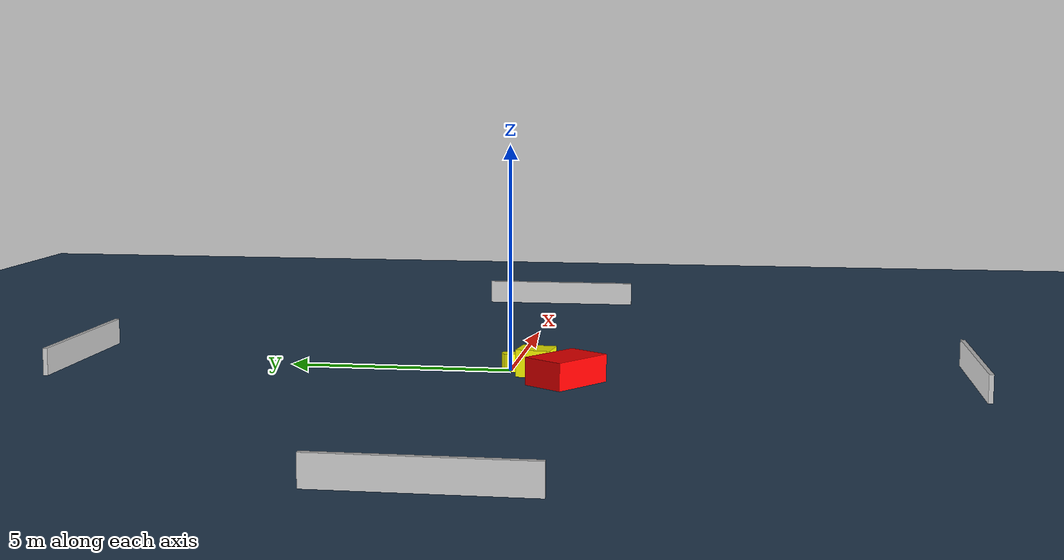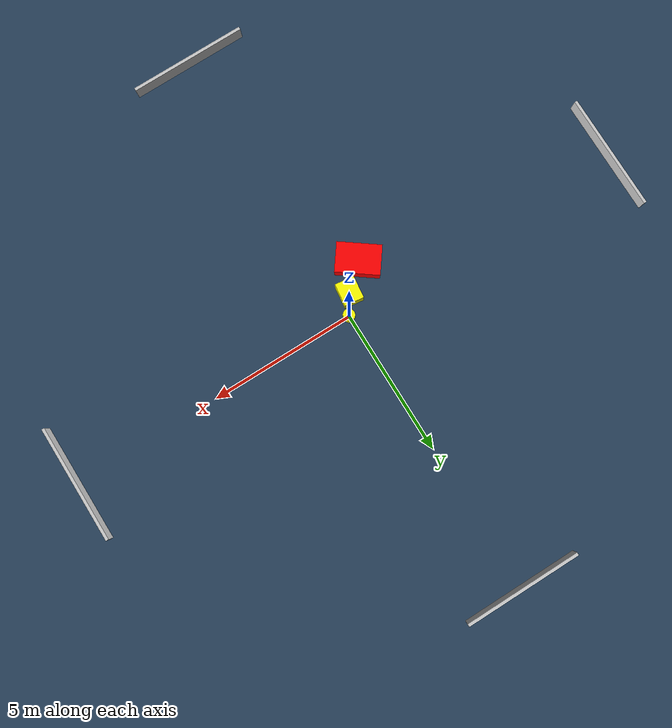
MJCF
<?xml version="1.0" ?>
<mujoco model="generated_environment">
  <option timestep="0.01" integrator="RK4" cone="elliptic"/>
  <default>
    <geom density="1"/>
  </default>
  <asset>
    <texture builtin="gradient" height="3072" name="skybox" rgb1="0.3 0.5 0.7" rgb2="0 0 0" type="skybox" width="512"/>
    <texture builtin="checker" height="300" name="groundplane" rgb1="0.2 0.3 0.4" rgb2="0.1 0.2 0.3" type="2d" width="300"/>
    <material name="groundplane" reflectance="0.2" texrepeat="5 5" texture="groundplane"/>
  </asset>
  <worldbody>
    <light dir="0 0 -1" directional="true" pos="0 0 1.5"/>
    <geom condim="3" friction="0.5 0.005 0.001" material="groundplane" name="floor" pos="0 0 0" size="0 0 0.05" type="plane"/>
    <body name="walls">
      <geom name="wall_1" condim="4" pos="-10.0 0.0 0.3" rgba="0.800000011920929 0.800000011920929 0.800000011920929 1.0" size="0.05 2.0 0.3" type="box"/>
      <geom name="wall_2" condim="4" pos="10.0 0.0 0.3" rgba="0.800000011920929 0.800000011920929 0.800000011920929 1.0" size="0.05 2.0 0.3" type="box"/>
      <geom name="wall_3" condim="4" pos="0.0 -10.0 0.3" rgba="0.800000011920929 0.800000011920929 0.800000011920929 1.0" size="2.0 0.05 0.3" type="box"/>
      <geom name="wall_4" condim="4" pos="0.0 10.0 0.3" rgba="0.800000011920929 0.800000011920929 0.800000011920929 1.0" size="2.0 0.05 0.3" type="box"/>
    </body>
    <body name="robot">
      <joint name="joint_x" type="slide" pos="0 0 0" axis="1 0 0"/>
      <joint name="joint_y" type="slide" pos="0 0 0" axis="0 1 0"/>
      <geom name="robot" type="cylinder" pos="0.0 0.0 0.2" size="0.2 0.2 0.0" mass="5.0" friction="1.0 0.005 0.0001" condim="4" rgba="1.0 1.0 0.0 1.0"/>
    </body>
    <body name="obstacle_1_movable">
      <geom name="obstacle_1_movable" condim="4" pos="-0.3980593932595303 -0.6196064565273246 0.3" euler="0 0 172.8753994674848" friction="0.0 0.005 0.001" rgba="1.0 1.0 0.0 1.0" size="0.33028568318141704 0.38037071972030756 0.3" type="box" mass="0.1"/>
      <joint type="free"/>
    </body>
    <body name="obstacle_2_static">
      <geom name="obstacle_2_static" condim="4" pos="-1.204719317532622 -1.362896084532806 0.3" euler="0 0 143.59266762773555" friction="0.0 0.005 0.001" rgba="1.0 0.0 0.0 1.0" size="0.7389221163761628 0.49623890773488344 0.3" type="box"/>
    </body>
  </worldbody>
  <actuator>
    <motor name="actuator_x" joint="joint_x" gear="1" ctrlrange="-1 1"/>
    <motor name="actuator_y" joint="joint_y" gear="1" ctrlrange="-1 1"/>
  </actuator>
</mujoco>
